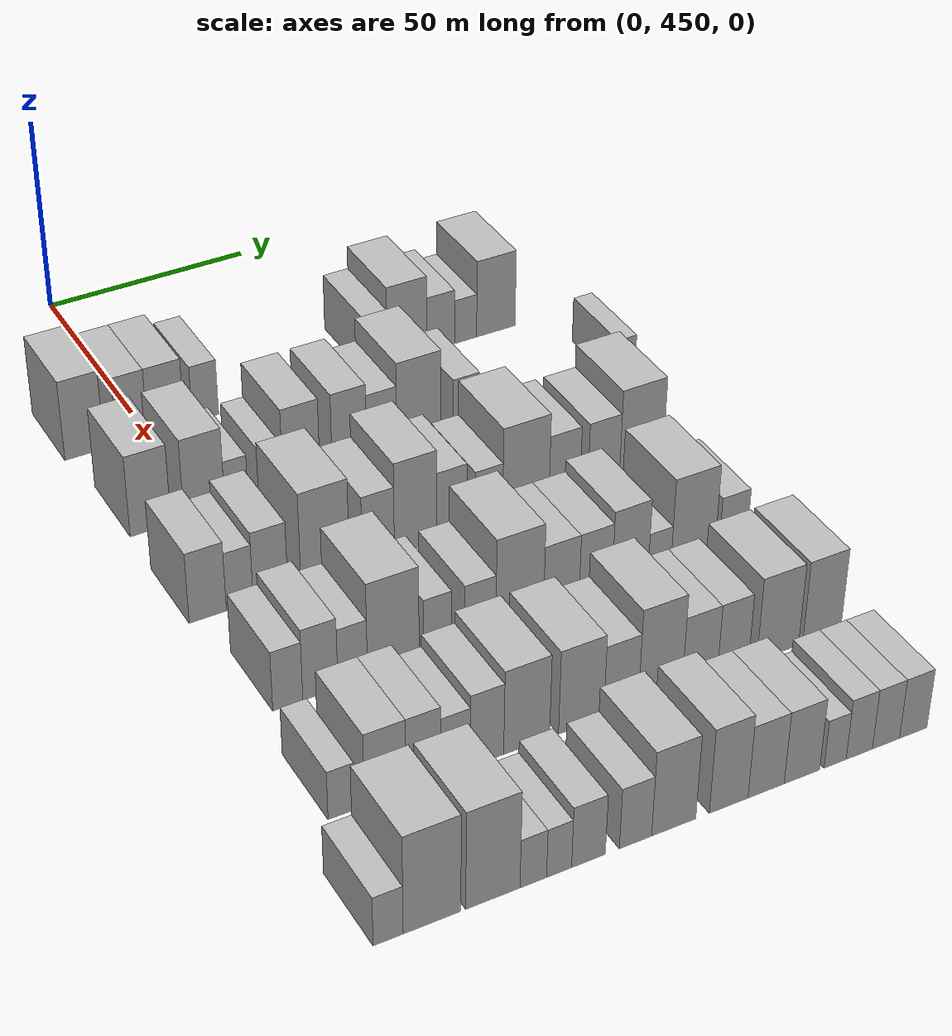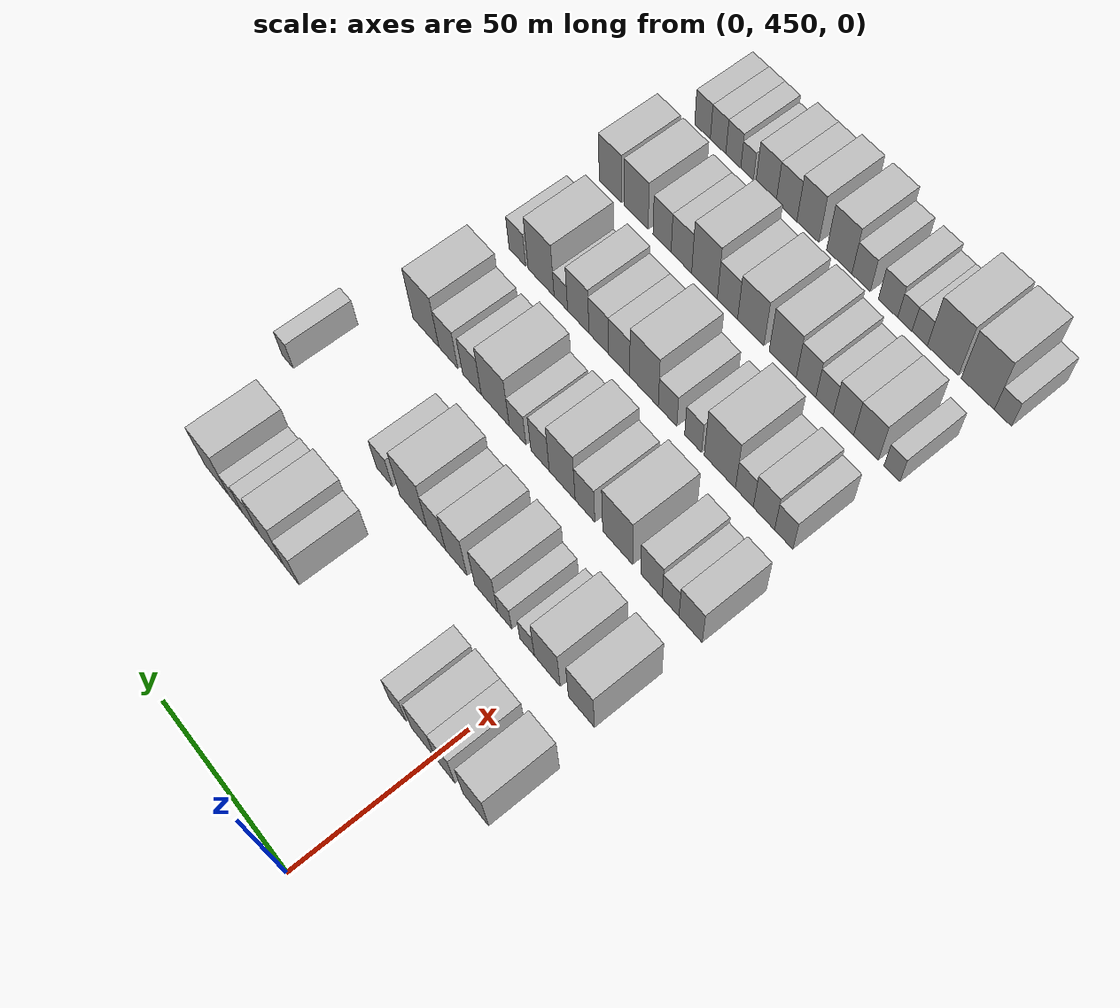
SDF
<sdf version="1.6">
 <world name="default">
  <model name="building_112">
   <static>1</static>
   <pose>50.0000 434.6580 0 0.000000 0.000000 0.000000</pose>
   <link name="link">
    <pose>0 0 10.50 0 0 0</pose>
    <collision name="collision"><geometry><box><size>20.0000 9.3532 21.0000</size></box></geometry></collision>
    <visual name="visual">
     <cast_shadows>0</cast_shadows>
     <geometry><box><size>20.0000 9.3532 21.0000</size></box></geometry>
     <material>
      <script>
       <uri>model://HANNAS_wall/materials/scripts</uri>
       <uri>model://HANNAS_wall/materials/textures</uri>
       <name>vrc/HANNAS_wall</name>
      </script>
     </material>
    </visual>
   </link>
  </model>
  <model name="building_113">
   <static>1</static>
   <pose>50.0000 446.0581 0 0.000000 0.000000 0.000000</pose>
   <link name="link">
    <pose>0 0 9.00 0 0 0</pose>
    <collision name="collision"><geometry><box><size>20.0000 7.4470 18.0000</size></box></geometry></collision>
    <visual name="visual">
     <cast_shadows>0</cast_shadows>
     <geometry><box><size>20.0000 7.4470 18.0000</size></box></geometry>
     <material>
      <script>
       <uri>model://HANNAS_wall/materials/scripts</uri>
       <uri>model://HANNAS_wall/materials/textures</uri>
       <name>vrc/HANNAS_wall</name>
      </script>
     </material>
    </visual>
   </link>
  </model>
  <model name="building_114">
   <static>1</static>
   <pose>50.0000 454.2263 0 0.000000 0.000000 0.000000</pose>
   <link name="link">
    <pose>0 0 9.00 0 0 0</pose>
    <collision name="collision"><geometry><box><size>20.0000 8.8895 18.0000</size></box></geometry></collision>
    <visual name="visual">
     <cast_shadows>0</cast_shadows>
     <geometry><box><size>20.0000 8.8895 18.0000</size></box></geometry>
     <material>
      <script>
       <uri>model://HANNAS_wall/materials/scripts</uri>
       <uri>model://HANNAS_wall/materials/textures</uri>
       <name>vrc/HANNAS_wall</name>
      </script>
     </material>
    </visual>
   </link>
  </model>
  <model name="building_115">
   <static>1</static>
   <pose>50.0000 463.8956 0 0.000000 0.000000 0.000000</pose>
   <link name="link">
    <pose>0 0 7.50 0 0 0</pose>
    <collision name="collision"><geometry><box><size>20.0000 6.4490 15.0000</size></box></geometry></collision>
    <visual name="visual">
     <cast_shadows>0</cast_shadows>
     <geometry><box><size>20.0000 6.4490 15.0000</size></box></geometry>
     <material>
      <script>
       <uri>model://HANNAS_wall/materials/scripts</uri>
       <uri>model://HANNAS_wall/materials/textures</uri>
       <name>vrc/HANNAS_wall</name>
      </script>
     </material>
    </visual>
   </link>
  </model>
  <model name="building_116">
   <static>1</static>
   <pose>50.0000 506.7661 0 0.000000 0.000000 0.000000</pose>
   <link name="link">
    <pose>0 0 7.50 0 0 0</pose>
    <collision name="collision"><geometry><box><size>20.0000 6.4307 15.0000</size></box></geometry></collision>
    <visual name="visual">
     <cast_shadows>0</cast_shadows>
     <geometry><box><size>20.0000 6.4307 15.0000</size></box></geometry>
     <material>
      <script>
       <uri>model://HANNAS_wall/materials/scripts</uri>
       <uri>model://HANNAS_wall/materials/textures</uri>
       <name>vrc/HANNAS_wall</name>
      </script>
     </material>
    </visual>
   </link>
  </model>
  <model name="building_117">
   <static>1</static>
   <pose>50.0000 515.1719 0 0.000000 0.000000 0.000000</pose>
   <link name="link">
    <pose>0 0 10.50 0 0 0</pose>
    <collision name="collision"><geometry><box><size>20.0000 10.3808 21.0000</size></box></geometry></collision>
    <visual name="visual">
     <cast_shadows>0</cast_shadows>
     <geometry><box><size>20.0000 10.3808 21.0000</size></box></geometry>
     <material>
      <script>
       <uri>model://HANNAS_wall/materials/scripts</uri>
       <uri>model://HANNAS_wall/materials/textures</uri>
       <name>vrc/HANNAS_wall</name>
      </script>
     </material>
    </visual>
   </link>
  </model>
  <model name="building_118">
   <static>1</static>
   <pose>50.0000 524.0543 0 0.000000 0.000000 0.000000</pose>
   <link name="link">
    <pose>0 0 7.50 0 0 0</pose>
    <collision name="collision"><geometry><box><size>20.0000 7.3841 15.0000</size></box></geometry></collision>
    <visual name="visual">
     <cast_shadows>0</cast_shadows>
     <geometry><box><size>20.0000 7.3841 15.0000</size></box></geometry>
     <material>
      <script>
       <uri>model://HANNAS_wall/materials/scripts</uri>
       <uri>model://HANNAS_wall/materials/textures</uri>
       <name>vrc/HANNAS_wall</name>
      </script>
     </material>
    </visual>
   </link>
  </model>
  <model name="building_119">
   <static>1</static>
   <pose>50.0000 530.6966 0 0.000000 0.000000 0.000000</pose>
   <link name="link">
    <pose>0 0 6.00 0 0 0</pose>
    <collision name="collision"><geometry><box><size>20.0000 5.9004 12.0000</size></box></geometry></collision>
    <visual name="visual">
     <cast_shadows>0</cast_shadows>
     <geometry><box><size>20.0000 5.9004 12.0000</size></box></geometry>
     <material>
      <script>
       <uri>model://HANNAS_wall/materials/scripts</uri>
       <uri>model://HANNAS_wall/materials/textures</uri>
       <name>vrc/HANNAS_wall</name>
      </script>
     </material>
    </visual>
   </link>
  </model>
  <model name="building_120">
   <static>1</static>
   <pose>50.0000 538.8459 0 0.000000 0.000000 0.000000</pose>
   <link name="link">
    <pose>0 0 10.50 0 0 0</pose>
    <collision name="collision"><geometry><box><size>20.0000 10.3983 21.0000</size></box></geometry></collision>
    <visual name="visual">
     <cast_shadows>0</cast_shadows>
     <geometry><box><size>20.0000 10.3983 21.0000</size></box></geometry>
     <material>
      <script>
       <uri>model://HANNAS_wall/materials/scripts</uri>
       <uri>model://HANNAS_wall/materials/textures</uri>
       <name>vrc/HANNAS_wall</name>
      </script>
     </material>
    </visual>
   </link>
  </model>
  <model name="building_228">
   <static>1</static>
   <pose>82.0000 437.0011 0 0.000000 0.000000 0.000000</pose>
   <link name="link">
    <pose>0 0 10.50 0 0 0</pose>
    <collision name="collision"><geometry><box><size>20.0000 9.4480 21.0000</size></box></geometry></collision>
    <visual name="visual">
     <cast_shadows>0</cast_shadows>
     <geometry><box><size>20.0000 9.4480 21.0000</size></box></geometry>
     <material>
      <script>
       <uri>model://HANNAS_wall/materials/scripts</uri>
       <uri>model://HANNAS_wall/materials/textures</uri>
       <name>vrc/HANNAS_wall</name>
      </script>
     </material>
    </visual>
   </link>
  </model>
  <model name="building_229">
   <static>1</static>
   <pose>82.0000 449.5131 0 0.000000 0.000000 0.000000</pose>
   <link name="link">
    <pose>0 0 10.50 0 0 0</pose>
    <collision name="collision"><geometry><box><size>20.0000 9.5760 21.0000</size></box></geometry></collision>
    <visual name="visual">
     <cast_shadows>0</cast_shadows>
     <geometry><box><size>20.0000 9.5760 21.0000</size></box></geometry>
     <material>
      <script>
       <uri>model://HANNAS_wall/materials/scripts</uri>
       <uri>model://HANNAS_wall/materials/textures</uri>
       <name>vrc/HANNAS_wall</name>
      </script>
     </material>
    </visual>
   </link>
  </model>
  <model name="building_230">
   <static>1</static>
   <pose>82.0000 457.0496 0 0.000000 0.000000 0.000000</pose>
   <link name="link">
    <pose>0 0 6.00 0 0 0</pose>
    <collision name="collision"><geometry><box><size>20.0000 5.4970 12.0000</size></box></geometry></collision>
    <visual name="visual">
     <cast_shadows>0</cast_shadows>
     <geometry><box><size>20.0000 5.4970 12.0000</size></box></geometry>
     <material>
      <script>
       <uri>model://HANNAS_wall/materials/scripts</uri>
       <uri>model://HANNAS_wall/materials/textures</uri>
       <name>vrc/HANNAS_wall</name>
      </script>
     </material>
    </visual>
   </link>
  </model>
  <model name="building_231">
   <static>1</static>
   <pose>82.0000 465.4951 0 0.000000 0.000000 0.000000</pose>
   <link name="link">
    <pose>0 0 6.00 0 0 0</pose>
    <collision name="collision"><geometry><box><size>20.0000 5.3938 12.0000</size></box></geometry></collision>
    <visual name="visual">
     <cast_shadows>0</cast_shadows>
     <geometry><box><size>20.0000 5.3938 12.0000</size></box></geometry>
     <material>
      <script>
       <uri>model://HANNAS_wall/materials/scripts</uri>
       <uri>model://HANNAS_wall/materials/textures</uri>
       <name>vrc/HANNAS_wall</name>
      </script>
     </material>
    </visual>
   </link>
  </model>
  <model name="building_232">
   <static>1</static>
   <pose>82.0000 472.6428 0 0.000000 0.000000 0.000000</pose>
   <link name="link">
    <pose>0 0 10.50 0 0 0</pose>
    <collision name="collision"><geometry><box><size>20.0000 8.9017 21.0000</size></box></geometry></collision>
    <visual name="visual">
     <cast_shadows>0</cast_shadows>
     <geometry><box><size>20.0000 8.9017 21.0000</size></box></geometry>
     <material>
      <script>
       <uri>model://HANNAS_wall/materials/scripts</uri>
       <uri>model://HANNAS_wall/materials/textures</uri>
       <name>vrc/HANNAS_wall</name>
      </script>
     </material>
    </visual>
   </link>
  </model>
  <model name="building_233">
   <static>1</static>
   <pose>82.0000 484.3307 0 0.000000 0.000000 0.000000</pose>
   <link name="link">
    <pose>0 0 10.50 0 0 0</pose>
    <collision name="collision"><geometry><box><size>20.0000 8.4741 21.0000</size></box></geometry></collision>
    <visual name="visual">
     <cast_shadows>0</cast_shadows>
     <geometry><box><size>20.0000 8.4741 21.0000</size></box></geometry>
     <material>
      <script>
       <uri>model://HANNAS_wall/materials/scripts</uri>
       <uri>model://HANNAS_wall/materials/textures</uri>
       <name>vrc/HANNAS_wall</name>
      </script>
     </material>
    </visual>
   </link>
  </model>
  <model name="building_234">
   <static>1</static>
   <pose>82.0000 492.3155 0 0.000000 0.000000 0.000000</pose>
   <link name="link">
    <pose>0 0 9.00 0 0 0</pose>
    <collision name="collision"><geometry><box><size>20.0000 7.4955 18.0000</size></box></geometry></collision>
    <visual name="visual">
     <cast_shadows>0</cast_shadows>
     <geometry><box><size>20.0000 7.4955 18.0000</size></box></geometry>
     <material>
      <script>
       <uri>model://HANNAS_wall/materials/scripts</uri>
       <uri>model://HANNAS_wall/materials/textures</uri>
       <name>vrc/HANNAS_wall</name>
      </script>
     </material>
    </visual>
   </link>
  </model>
  <model name="building_235">
   <static>1</static>
   <pose>82.0000 501.6104 0 0.000000 0.000000 0.000000</pose>
   <link name="link">
    <pose>0 0 12.00 0 0 0</pose>
    <collision name="collision"><geometry><box><size>20.0000 11.0942 24.0000</size></box></geometry></collision>
    <visual name="visual">
     <cast_shadows>0</cast_shadows>
     <geometry><box><size>20.0000 11.0942 24.0000</size></box></geometry>
     <material>
      <script>
       <uri>model://HANNAS_wall/materials/scripts</uri>
       <uri>model://HANNAS_wall/materials/textures</uri>
       <name>vrc/HANNAS_wall</name>
      </script>
     </material>
    </visual>
   </link>
  </model>
  <model name="building_236">
   <static>1</static>
   <pose>82.0000 513.4902 0 0.000000 0.000000 0.000000</pose>
   <link name="link">
    <pose>0 0 7.50 0 0 0</pose>
    <collision name="collision"><geometry><box><size>20.0000 6.6654 15.0000</size></box></geometry></collision>
    <visual name="visual">
     <cast_shadows>0</cast_shadows>
     <geometry><box><size>20.0000 6.6654 15.0000</size></box></geometry>
     <material>
      <script>
       <uri>model://HANNAS_wall/materials/scripts</uri>
       <uri>model://HANNAS_wall/materials/textures</uri>
       <name>vrc/HANNAS_wall</name>
      </script>
     </material>
    </visual>
   </link>
  </model>
  <model name="building_237">
   <static>1</static>
   <pose>82.0000 555.2536 0 0.000000 0.000000 0.000000</pose>
   <link name="link">
    <pose>0 0 6.00 0 0 0</pose>
    <collision name="collision"><geometry><box><size>20.0000 4.9538 12.0000</size></box></geometry></collision>
    <visual name="visual">
     <cast_shadows>0</cast_shadows>
     <geometry><box><size>20.0000 4.9538 12.0000</size></box></geometry>
     <material>
      <script>
       <uri>model://HANNAS_wall/materials/scripts</uri>
       <uri>model://HANNAS_wall/materials/textures</uri>
       <name>vrc/HANNAS_wall</name>
      </script>
     </material>
    </visual>
   </link>
  </model>
  <model name="building_344">
   <static>1</static>
   <pose>114.0000 436.1235 0 0.000000 0.000000 0.000000</pose>
   <link name="link">
    <pose>0 0 9.00 0 0 0</pose>
    <collision name="collision"><geometry><box><size>20.0000 8.3082 18.0000</size></box></geometry></collision>
    <visual name="visual">
     <cast_shadows>0</cast_shadows>
     <geometry><box><size>20.0000 8.3082 18.0000</size></box></geometry>
     <material>
      <script>
       <uri>model://HANNAS_wall/materials/scripts</uri>
       <uri>model://HANNAS_wall/materials/textures</uri>
       <name>vrc/HANNAS_wall</name>
      </script>
     </material>
    </visual>
   </link>
  </model>
  <model name="building_345">
   <static>1</static>
   <pose>114.0000 443.3012 0 0.000000 0.000000 0.000000</pose>
   <link name="link">
    <pose>0 0 7.50 0 0 0</pose>
    <collision name="collision"><geometry><box><size>20.0000 6.0471 15.0000</size></box></geometry></collision>
    <visual name="visual">
     <cast_shadows>0</cast_shadows>
     <geometry><box><size>20.0000 6.0471 15.0000</size></box></geometry>
     <material>
      <script>
       <uri>model://HANNAS_wall/materials/scripts</uri>
       <uri>model://HANNAS_wall/materials/textures</uri>
       <name>vrc/HANNAS_wall</name>
      </script>
     </material>
    </visual>
   </link>
  </model>
  <model name="building_346">
   <static>1</static>
   <pose>114.0000 450.2635 0 0.000000 0.000000 0.000000</pose>
   <link name="link">
    <pose>0 0 9.00 0 0 0</pose>
    <collision name="collision"><geometry><box><size>20.0000 7.8776 18.0000</size></box></geometry></collision>
    <visual name="visual">
     <cast_shadows>0</cast_shadows>
     <geometry><box><size>20.0000 7.8776 18.0000</size></box></geometry>
     <material>
      <script>
       <uri>model://HANNAS_wall/materials/scripts</uri>
       <uri>model://HANNAS_wall/materials/textures</uri>
       <name>vrc/HANNAS_wall</name>
      </script>
     </material>
    </visual>
   </link>
  </model>
  <model name="building_347">
   <static>1</static>
   <pose>114.0000 462.8107 0 0.000000 0.000000 0.000000</pose>
   <link name="link">
    <pose>0 0 12.00 0 0 0</pose>
    <collision name="collision"><geometry><box><size>20.0000 11.2167 24.0000</size></box></geometry></collision>
    <visual name="visual">
     <cast_shadows>0</cast_shadows>
     <geometry><box><size>20.0000 11.2167 24.0000</size></box></geometry>
     <material>
      <script>
       <uri>model://HANNAS_wall/materials/scripts</uri>
       <uri>model://HANNAS_wall/materials/textures</uri>
       <name>vrc/HANNAS_wall</name>
      </script>
     </material>
    </visual>
   </link>
  </model>
  <model name="building_348">
   <static>1</static>
   <pose>114.0000 475.1992 0 0.000000 0.000000 0.000000</pose>
   <link name="link">
    <pose>0 0 9.00 0 0 0</pose>
    <collision name="collision"><geometry><box><size>20.0000 7.5605 18.0000</size></box></geometry></collision>
    <visual name="visual">
     <cast_shadows>0</cast_shadows>
     <geometry><box><size>20.0000 7.5605 18.0000</size></box></geometry>
     <material>
      <script>
       <uri>model://HANNAS_wall/materials/scripts</uri>
       <uri>model://HANNAS_wall/materials/textures</uri>
       <name>vrc/HANNAS_wall</name>
      </script>
     </material>
    </visual>
   </link>
  </model>
  <model name="building_349">
   <static>1</static>
   <pose>114.0000 484.0128 0 0.000000 0.000000 0.000000</pose>
   <link name="link">
    <pose>0 0 12.00 0 0 0</pose>
    <collision name="collision"><geometry><box><size>20.0000 10.0666 24.0000</size></box></geometry></collision>
    <visual name="visual">
     <cast_shadows>0</cast_shadows>
     <geometry><box><size>20.0000 10.0666 24.0000</size></box></geometry>
     <material>
      <script>
       <uri>model://HANNAS_wall/materials/scripts</uri>
       <uri>model://HANNAS_wall/materials/textures</uri>
       <name>vrc/HANNAS_wall</name>
      </script>
     </material>
    </visual>
   </link>
  </model>
  <model name="building_350">
   <static>1</static>
   <pose>114.0000 492.6758 0 0.000000 0.000000 0.000000</pose>
   <link name="link">
    <pose>0 0 9.00 0 0 0</pose>
    <collision name="collision"><geometry><box><size>20.0000 7.2595 18.0000</size></box></geometry></collision>
    <visual name="visual">
     <cast_shadows>0</cast_shadows>
     <geometry><box><size>20.0000 7.2595 18.0000</size></box></geometry>
     <material>
      <script>
       <uri>model://HANNAS_wall/materials/scripts</uri>
       <uri>model://HANNAS_wall/materials/textures</uri>
       <name>vrc/HANNAS_wall</name>
      </script>
     </material>
    </visual>
   </link>
  </model>
  <model name="building_351">
   <static>1</static>
   <pose>114.0000 501.6518 0 0.000000 0.000000 0.000000</pose>
   <link name="link">
    <pose>0 0 7.50 0 0 0</pose>
    <collision name="collision"><geometry><box><size>20.0000 6.6923 15.0000</size></box></geometry></collision>
    <visual name="visual">
     <cast_shadows>0</cast_shadows>
     <geometry><box><size>20.0000 6.6923 15.0000</size></box></geometry>
     <material>
      <script>
       <uri>model://HANNAS_wall/materials/scripts</uri>
       <uri>model://HANNAS_wall/materials/textures</uri>
       <name>vrc/HANNAS_wall</name>
      </script>
     </material>
    </visual>
   </link>
  </model>
  <model name="building_352">
   <static>1</static>
   <pose>114.0000 510.7250 0 0.000000 0.000000 0.000000</pose>
   <link name="link">
    <pose>0 0 12.00 0 0 0</pose>
    <collision name="collision"><geometry><box><size>20.0000 11.4541 24.0000</size></box></geometry></collision>
    <visual name="visual">
     <cast_shadows>0</cast_shadows>
     <geometry><box><size>20.0000 11.4541 24.0000</size></box></geometry>
     <material>
      <script>
       <uri>model://HANNAS_wall/materials/scripts</uri>
       <uri>model://HANNAS_wall/materials/textures</uri>
       <name>vrc/HANNAS_wall</name>
      </script>
     </material>
    </visual>
   </link>
  </model>
  <model name="building_353">
   <static>1</static>
   <pose>114.0000 520.3325 0 0.000000 0.000000 0.000000</pose>
   <link name="link">
    <pose>0 0 9.00 0 0 0</pose>
    <collision name="collision"><geometry><box><size>20.0000 7.7610 18.0000</size></box></geometry></collision>
    <visual name="visual">
     <cast_shadows>0</cast_shadows>
     <geometry><box><size>20.0000 7.7610 18.0000</size></box></geometry>
     <material>
      <script>
       <uri>model://HANNAS_wall/materials/scripts</uri>
       <uri>model://HANNAS_wall/materials/textures</uri>
       <name>vrc/HANNAS_wall</name>
      </script>
     </material>
    </visual>
   </link>
  </model>
  <model name="building_354">
   <static>1</static>
   <pose>114.0000 530.2066 0 0.000000 0.000000 0.000000</pose>
   <link name="link">
    <pose>0 0 9.00 0 0 0</pose>
    <collision name="collision"><geometry><box><size>20.0000 7.9872 18.0000</size></box></geometry></collision>
    <visual name="visual">
     <cast_shadows>0</cast_shadows>
     <geometry><box><size>20.0000 7.9872 18.0000</size></box></geometry>
     <material>
      <script>
       <uri>model://HANNAS_wall/materials/scripts</uri>
       <uri>model://HANNAS_wall/materials/textures</uri>
       <name>vrc/HANNAS_wall</name>
      </script>
     </material>
    </visual>
   </link>
  </model>
  <model name="building_355">
   <static>1</static>
   <pose>114.0000 539.7605 0 0.000000 0.000000 0.000000</pose>
   <link name="link">
    <pose>0 0 12.00 0 0 0</pose>
    <collision name="collision"><geometry><box><size>20.0000 11.1205 24.0000</size></box></geometry></collision>
    <visual name="visual">
     <cast_shadows>0</cast_shadows>
     <geometry><box><size>20.0000 11.1205 24.0000</size></box></geometry>
     <material>
      <script>
       <uri>model://HANNAS_wall/materials/scripts</uri>
       <uri>model://HANNAS_wall/materials/textures</uri>
       <name>vrc/HANNAS_wall</name>
      </script>
     </material>
    </visual>
   </link>
  </model>
  <model name="building_461">
   <static>1</static>
   <pose>146.0000 439.0527 0 0.000000 0.000000 0.000000</pose>
   <link name="link">
    <pose>0 0 7.50 0 0 0</pose>
    <collision name="collision"><geometry><box><size>20.0000 6.5292 15.0000</size></box></geometry></collision>
    <visual name="visual">
     <cast_shadows>0</cast_shadows>
     <geometry><box><size>20.0000 6.5292 15.0000</size></box></geometry>
     <material>
      <script>
       <uri>model://HANNAS_wall/materials/scripts</uri>
       <uri>model://HANNAS_wall/materials/textures</uri>
       <name>vrc/HANNAS_wall</name>
      </script>
     </material>
    </visual>
   </link>
  </model>
  <model name="building_462">
   <static>1</static>
   <pose>146.0000 446.1555 0 0.000000 0.000000 0.000000</pose>
   <link name="link">
    <pose>0 0 9.00 0 0 0</pose>
    <collision name="collision"><geometry><box><size>20.0000 7.6764 18.0000</size></box></geometry></collision>
    <visual name="visual">
     <cast_shadows>0</cast_shadows>
     <geometry><box><size>20.0000 7.6764 18.0000</size></box></geometry>
     <material>
      <script>
       <uri>model://HANNAS_wall/materials/scripts</uri>
       <uri>model://HANNAS_wall/materials/textures</uri>
       <name>vrc/HANNAS_wall</name>
      </script>
     </material>
    </visual>
   </link>
  </model>
  <model name="building_463">
   <static>1</static>
   <pose>146.0000 453.2674 0 0.000000 0.000000 0.000000</pose>
   <link name="link">
    <pose>0 0 7.50 0 0 0</pose>
    <collision name="collision"><geometry><box><size>20.0000 6.5474 15.0000</size></box></geometry></collision>
    <visual name="visual">
     <cast_shadows>0</cast_shadows>
     <geometry><box><size>20.0000 6.5474 15.0000</size></box></geometry>
     <material>
      <script>
       <uri>model://HANNAS_wall/materials/scripts</uri>
       <uri>model://HANNAS_wall/materials/textures</uri>
       <name>vrc/HANNAS_wall</name>
      </script>
     </material>
    </visual>
   </link>
  </model>
  <model name="building_464">
   <static>1</static>
   <pose>146.0000 462.3223 0 0.000000 0.000000 0.000000</pose>
   <link name="link">
    <pose>0 0 12.00 0 0 0</pose>
    <collision name="collision"><geometry><box><size>20.0000 11.5624 24.0000</size></box></geometry></collision>
    <visual name="visual">
     <cast_shadows>0</cast_shadows>
     <geometry><box><size>20.0000 11.5624 24.0000</size></box></geometry>
     <material>
      <script>
       <uri>model://HANNAS_wall/materials/scripts</uri>
       <uri>model://HANNAS_wall/materials/textures</uri>
       <name>vrc/HANNAS_wall</name>
      </script>
     </material>
    </visual>
   </link>
  </model>
  <model name="building_465">
   <static>1</static>
   <pose>146.0000 472.2973 0 0.000000 0.000000 0.000000</pose>
   <link name="link">
    <pose>0 0 7.50 0 0 0</pose>
    <collision name="collision"><geometry><box><size>20.0000 6.3877 15.0000</size></box></geometry></collision>
    <visual name="visual">
     <cast_shadows>0</cast_shadows>
     <geometry><box><size>20.0000 6.3877 15.0000</size></box></geometry>
     <material>
      <script>
       <uri>model://HANNAS_wall/materials/scripts</uri>
       <uri>model://HANNAS_wall/materials/textures</uri>
       <name>vrc/HANNAS_wall</name>
      </script>
     </material>
    </visual>
   </link>
  </model>
  <model name="building_466">
   <static>1</static>
   <pose>146.0000 482.0520 0 0.000000 0.000000 0.000000</pose>
   <link name="link">
    <pose>0 0 7.50 0 0 0</pose>
    <collision name="collision"><geometry><box><size>20.0000 7.1217 15.0000</size></box></geometry></collision>
    <visual name="visual">
     <cast_shadows>0</cast_shadows>
     <geometry><box><size>20.0000 7.1217 15.0000</size></box></geometry>
     <material>
      <script>
       <uri>model://HANNAS_wall/materials/scripts</uri>
       <uri>model://HANNAS_wall/materials/textures</uri>
       <name>vrc/HANNAS_wall</name>
      </script>
     </material>
    </visual>
   </link>
  </model>
  <model name="building_467">
   <static>1</static>
   <pose>146.0000 491.1781 0 0.000000 0.000000 0.000000</pose>
   <link name="link">
    <pose>0 0 12.00 0 0 0</pose>
    <collision name="collision"><geometry><box><size>20.0000 11.1304 24.0000</size></box></geometry></collision>
    <visual name="visual">
     <cast_shadows>0</cast_shadows>
     <geometry><box><size>20.0000 11.1304 24.0000</size></box></geometry>
     <material>
      <script>
       <uri>model://HANNAS_wall/materials/scripts</uri>
       <uri>model://HANNAS_wall/materials/textures</uri>
       <name>vrc/HANNAS_wall</name>
      </script>
     </material>
    </visual>
   </link>
  </model>
  <model name="building_468">
   <static>1</static>
   <pose>146.0000 500.9476 0 0.000000 0.000000 0.000000</pose>
   <link name="link">
    <pose>0 0 9.00 0 0 0</pose>
    <collision name="collision"><geometry><box><size>20.0000 8.4087 18.0000</size></box></geometry></collision>
    <visual name="visual">
     <cast_shadows>0</cast_shadows>
     <geometry><box><size>20.0000 8.4087 18.0000</size></box></geometry>
     <material>
      <script>
       <uri>model://HANNAS_wall/materials/scripts</uri>
       <uri>model://HANNAS_wall/materials/textures</uri>
       <name>vrc/HANNAS_wall</name>
      </script>
     </material>
    </visual>
   </link>
  </model>
  <model name="building_469">
   <static>1</static>
   <pose>146.0000 509.0792 0 0.000000 0.000000 0.000000</pose>
   <link name="link">
    <pose>0 0 9.00 0 0 0</pose>
    <collision name="collision"><geometry><box><size>20.0000 7.8544 18.0000</size></box></geometry></collision>
    <visual name="visual">
     <cast_shadows>0</cast_shadows>
     <geometry><box><size>20.0000 7.8544 18.0000</size></box></geometry>
     <material>
      <script>
       <uri>model://HANNAS_wall/materials/scripts</uri>
       <uri>model://HANNAS_wall/materials/textures</uri>
       <name>vrc/HANNAS_wall</name>
      </script>
     </material>
    </visual>
   </link>
  </model>
  <model name="building_470">
   <static>1</static>
   <pose>146.0000 517.3806 0 0.000000 0.000000 0.000000</pose>
   <link name="link">
    <pose>0 0 10.50 0 0 0</pose>
    <collision name="collision"><geometry><box><size>20.0000 8.7485 21.0000</size></box></geometry></collision>
    <visual name="visual">
     <cast_shadows>0</cast_shadows>
     <geometry><box><size>20.0000 8.7485 21.0000</size></box></geometry>
     <material>
      <script>
       <uri>model://HANNAS_wall/materials/scripts</uri>
       <uri>model://HANNAS_wall/materials/textures</uri>
       <name>vrc/HANNAS_wall</name>
      </script>
     </material>
    </visual>
   </link>
  </model>
  <model name="building_471">
   <static>1</static>
   <pose>146.0000 524.5492 0 0.000000 0.000000 0.000000</pose>
   <link name="link">
    <pose>0 0 6.00 0 0 0</pose>
    <collision name="collision"><geometry><box><size>20.0000 5.5888 12.0000</size></box></geometry></collision>
    <visual name="visual">
     <cast_shadows>0</cast_shadows>
     <geometry><box><size>20.0000 5.5888 12.0000</size></box></geometry>
     <material>
      <script>
       <uri>model://HANNAS_wall/materials/scripts</uri>
       <uri>model://HANNAS_wall/materials/textures</uri>
       <name>vrc/HANNAS_wall</name>
      </script>
     </material>
    </visual>
   </link>
  </model>
  <model name="building_472">
   <static>1</static>
   <pose>146.0000 532.7976 0 0.000000 0.000000 0.000000</pose>
   <link name="link">
    <pose>0 0 12.00 0 0 0</pose>
    <collision name="collision"><geometry><box><size>20.0000 10.9081 24.0000</size></box></geometry></collision>
    <visual name="visual">
     <cast_shadows>0</cast_shadows>
     <geometry><box><size>20.0000 10.9081 24.0000</size></box></geometry>
     <material>
      <script>
       <uri>model://HANNAS_wall/materials/scripts</uri>
       <uri>model://HANNAS_wall/materials/textures</uri>
       <name>vrc/HANNAS_wall</name>
      </script>
     </material>
    </visual>
   </link>
  </model>
  <model name="building_473">
   <static>1</static>
   <pose>146.0000 542.7695 0 0.000000 0.000000 0.000000</pose>
   <link name="link">
    <pose>0 0 7.50 0 0 0</pose>
    <collision name="collision"><geometry><box><size>20.0000 7.0357 15.0000</size></box></geometry></collision>
    <visual name="visual">
     <cast_shadows>0</cast_shadows>
     <geometry><box><size>20.0000 7.0357 15.0000</size></box></geometry>
     <material>
      <script>
       <uri>model://HANNAS_wall/materials/scripts</uri>
       <uri>model://HANNAS_wall/materials/textures</uri>
       <name>vrc/HANNAS_wall</name>
      </script>
     </material>
    </visual>
   </link>
  </model>
  <model name="building_586">
   <static>1</static>
   <pose>178.0000 434.9873 0 0.000000 0.000000 0.000000</pose>
   <link name="link">
    <pose>0 0 6.00 0 0 0</pose>
    <collision name="collision"><geometry><box><size>20.0000 5.5712 12.0000</size></box></geometry></collision>
    <visual name="visual">
     <cast_shadows>0</cast_shadows>
     <geometry><box><size>20.0000 5.5712 12.0000</size></box></geometry>
     <material>
      <script>
       <uri>model://HANNAS_wall/materials/scripts</uri>
       <uri>model://HANNAS_wall/materials/textures</uri>
       <name>vrc/HANNAS_wall</name>
      </script>
     </material>
    </visual>
   </link>
  </model>
  <model name="building_587">
   <static>1</static>
   <pose>178.0000 444.1779 0 0.000000 0.000000 0.000000</pose>
   <link name="link">
    <pose>0 0 9.00 0 0 0</pose>
    <collision name="collision"><geometry><box><size>20.0000 8.8101 18.0000</size></box></geometry></collision>
    <visual name="visual">
     <cast_shadows>0</cast_shadows>
     <geometry><box><size>20.0000 8.8101 18.0000</size></box></geometry>
     <material>
      <script>
       <uri>model://HANNAS_wall/materials/scripts</uri>
       <uri>model://HANNAS_wall/materials/textures</uri>
       <name>vrc/HANNAS_wall</name>
      </script>
     </material>
    </visual>
   </link>
  </model>
  <model name="building_588">
   <static>1</static>
   <pose>178.0000 452.2635 0 0.000000 0.000000 0.000000</pose>
   <link name="link">
    <pose>0 0 9.00 0 0 0</pose>
    <collision name="collision"><geometry><box><size>20.0000 7.3611 18.0000</size></box></geometry></collision>
    <visual name="visual">
     <cast_shadows>0</cast_shadows>
     <geometry><box><size>20.0000 7.3611 18.0000</size></box></geometry>
     <material>
      <script>
       <uri>model://HANNAS_wall/materials/scripts</uri>
       <uri>model://HANNAS_wall/materials/textures</uri>
       <name>vrc/HANNAS_wall</name>
      </script>
     </material>
    </visual>
   </link>
  </model>
  <model name="building_589">
   <static>1</static>
   <pose>178.0000 459.1509 0 0.000000 0.000000 0.000000</pose>
   <link name="link">
    <pose>0 0 7.50 0 0 0</pose>
    <collision name="collision"><geometry><box><size>20.0000 6.4137 15.0000</size></box></geometry></collision>
    <visual name="visual">
     <cast_shadows>0</cast_shadows>
     <geometry><box><size>20.0000 6.4137 15.0000</size></box></geometry>
     <material>
      <script>
       <uri>model://HANNAS_wall/materials/scripts</uri>
       <uri>model://HANNAS_wall/materials/textures</uri>
       <name>vrc/HANNAS_wall</name>
      </script>
     </material>
    </visual>
   </link>
  </model>
  <model name="building_590">
   <static>1</static>
   <pose>178.0000 465.9999 0 0.000000 0.000000 0.000000</pose>
   <link name="link">
    <pose>0 0 9.00 0 0 0</pose>
    <collision name="collision"><geometry><box><size>20.0000 7.2842 18.0000</size></box></geometry></collision>
    <visual name="visual">
     <cast_shadows>0</cast_shadows>
     <geometry><box><size>20.0000 7.2842 18.0000</size></box></geometry>
     <material>
      <script>
       <uri>model://HANNAS_wall/materials/scripts</uri>
       <uri>model://HANNAS_wall/materials/textures</uri>
       <name>vrc/HANNAS_wall</name>
      </script>
     </material>
    </visual>
   </link>
  </model>
  <model name="building_591">
   <static>1</static>
   <pose>178.0000 474.7125 0 0.000000 0.000000 0.000000</pose>
   <link name="link">
    <pose>0 0 10.50 0 0 0</pose>
    <collision name="collision"><geometry><box><size>20.0000 10.1410 21.0000</size></box></geometry></collision>
    <visual name="visual">
     <cast_shadows>0</cast_shadows>
     <geometry><box><size>20.0000 10.1410 21.0000</size></box></geometry>
     <material>
      <script>
       <uri>model://HANNAS_wall/materials/scripts</uri>
       <uri>model://HANNAS_wall/materials/textures</uri>
       <name>vrc/HANNAS_wall</name>
      </script>
     </material>
    </visual>
   </link>
  </model>
  <model name="building_592">
   <static>1</static>
   <pose>178.0000 486.8575 0 0.000000 0.000000 0.000000</pose>
   <link name="link">
    <pose>0 0 10.50 0 0 0</pose>
    <collision name="collision"><geometry><box><size>20.0000 10.1490 21.0000</size></box></geometry></collision>
    <visual name="visual">
     <cast_shadows>0</cast_shadows>
     <geometry><box><size>20.0000 10.1490 21.0000</size></box></geometry>
     <material>
      <script>
       <uri>model://HANNAS_wall/materials/scripts</uri>
       <uri>model://HANNAS_wall/materials/textures</uri>
       <name>vrc/HANNAS_wall</name>
      </script>
     </material>
    </visual>
   </link>
  </model>
  <model name="building_593">
   <static>1</static>
   <pose>178.0000 495.8835 0 0.000000 0.000000 0.000000</pose>
   <link name="link">
    <pose>0 0 9.00 0 0 0</pose>
    <collision name="collision"><geometry><box><size>20.0000 7.9030 18.0000</size></box></geometry></collision>
    <visual name="visual">
     <cast_shadows>0</cast_shadows>
     <geometry><box><size>20.0000 7.9030 18.0000</size></box></geometry>
     <material>
      <script>
       <uri>model://HANNAS_wall/materials/scripts</uri>
       <uri>model://HANNAS_wall/materials/textures</uri>
       <name>vrc/HANNAS_wall</name>
      </script>
     </material>
    </visual>
   </link>
  </model>
  <model name="building_594">
   <static>1</static>
   <pose>178.0000 504.9119 0 0.000000 0.000000 0.000000</pose>
   <link name="link">
    <pose>0 0 12.00 0 0 0</pose>
    <collision name="collision"><geometry><box><size>20.0000 10.1538 24.0000</size></box></geometry></collision>
    <visual name="visual">
     <cast_shadows>0</cast_shadows>
     <geometry><box><size>20.0000 10.1538 24.0000</size></box></geometry>
     <material>
      <script>
       <uri>model://HANNAS_wall/materials/scripts</uri>
       <uri>model://HANNAS_wall/materials/textures</uri>
       <name>vrc/HANNAS_wall</name>
      </script>
     </material>
    </visual>
   </link>
  </model>
  <model name="building_595">
   <static>1</static>
   <pose>178.0000 514.1134 0 0.000000 0.000000 0.000000</pose>
   <link name="link">
    <pose>0 0 9.00 0 0 0</pose>
    <collision name="collision"><geometry><box><size>20.0000 8.2493 18.0000</size></box></geometry></collision>
    <visual name="visual">
     <cast_shadows>0</cast_shadows>
     <geometry><box><size>20.0000 8.2493 18.0000</size></box></geometry>
     <material>
      <script>
       <uri>model://HANNAS_wall/materials/scripts</uri>
       <uri>model://HANNAS_wall/materials/textures</uri>
       <name>vrc/HANNAS_wall</name>
      </script>
     </material>
    </visual>
   </link>
  </model>
  <model name="building_596">
   <static>1</static>
   <pose>178.0000 521.9295 0 0.000000 0.000000 0.000000</pose>
   <link name="link">
    <pose>0 0 9.00 0 0 0</pose>
    <collision name="collision"><geometry><box><size>20.0000 7.3829 18.0000</size></box></geometry></collision>
    <visual name="visual">
     <cast_shadows>0</cast_shadows>
     <geometry><box><size>20.0000 7.3829 18.0000</size></box></geometry>
     <material>
      <script>
       <uri>model://HANNAS_wall/materials/scripts</uri>
       <uri>model://HANNAS_wall/materials/textures</uri>
       <name>vrc/HANNAS_wall</name>
      </script>
     </material>
    </visual>
   </link>
  </model>
  <model name="building_597">
   <static>1</static>
   <pose>178.0000 532.6503 0 0.000000 0.000000 0.000000</pose>
   <link name="link">
    <pose>0 0 10.50 0 0 0</pose>
    <collision name="collision"><geometry><box><size>20.0000 10.0587 21.0000</size></box></geometry></collision>
    <visual name="visual">
     <cast_shadows>0</cast_shadows>
     <geometry><box><size>20.0000 10.0587 21.0000</size></box></geometry>
     <material>
      <script>
       <uri>model://HANNAS_wall/materials/scripts</uri>
       <uri>model://HANNAS_wall/materials/textures</uri>
       <name>vrc/HANNAS_wall</name>
      </script>
     </material>
    </visual>
   </link>
  </model>
  <model name="building_598">
   <static>1</static>
   <pose>178.0000 543.3386 0 0.000000 0.000000 0.000000</pose>
   <link name="link">
    <pose>0 0 10.50 0 0 0</pose>
    <collision name="collision"><geometry><box><size>20.0000 9.3178 21.0000</size></box></geometry></collision>
    <visual name="visual">
     <cast_shadows>0</cast_shadows>
     <geometry><box><size>20.0000 9.3178 21.0000</size></box></geometry>
     <material>
      <script>
       <uri>model://HANNAS_wall/materials/scripts</uri>
       <uri>model://HANNAS_wall/materials/textures</uri>
       <name>vrc/HANNAS_wall</name>
      </script>
     </material>
    </visual>
   </link>
  </model>
  <model name="building_698">
   <static>1</static>
   <pose>210.0000 428.4114 0 0.000000 0.000000 0.000000</pose>
   <link name="link">
    <pose>0 0 6.00 0 0 0</pose>
    <collision name="collision"><geometry><box><size>20.0000 5.9782 12.0000</size></box></geometry></collision>
    <visual name="visual">
     <cast_shadows>0</cast_shadows>
     <geometry><box><size>20.0000 5.9782 12.0000</size></box></geometry>
     <material>
      <script>
       <uri>model://HANNAS_wall/materials/scripts</uri>
       <uri>model://HANNAS_wall/materials/textures</uri>
       <name>vrc/HANNAS_wall</name>
      </script>
     </material>
    </visual>
   </link>
  </model>
  <model name="building_699">
   <static>1</static>
   <pose>210.0000 437.2123 0 0.000000 0.000000 0.000000</pose>
   <link name="link">
    <pose>0 0 12.00 0 0 0</pose>
    <collision name="collision"><geometry><box><size>20.0000 11.6235 24.0000</size></box></geometry></collision>
    <visual name="visual">
     <cast_shadows>0</cast_shadows>
     <geometry><box><size>20.0000 11.6235 24.0000</size></box></geometry>
     <material>
      <script>
       <uri>model://HANNAS_wall/materials/scripts</uri>
       <uri>model://HANNAS_wall/materials/textures</uri>
       <name>vrc/HANNAS_wall</name>
      </script>
     </material>
    </visual>
   </link>
  </model>
  <model name="building_700">
   <static>1</static>
   <pose>210.0000 449.6031 0 0.000000 0.000000 0.000000</pose>
   <link name="link">
    <pose>0 0 12.00 0 0 0</pose>
    <collision name="collision"><geometry><box><size>20.0000 11.1583 24.0000</size></box></geometry></collision>
    <visual name="visual">
     <cast_shadows>0</cast_shadows>
     <geometry><box><size>20.0000 11.1583 24.0000</size></box></geometry>
     <material>
      <script>
       <uri>model://HANNAS_wall/materials/scripts</uri>
       <uri>model://HANNAS_wall/materials/textures</uri>
       <name>vrc/HANNAS_wall</name>
      </script>
     </material>
    </visual>
   </link>
  </model>
  <model name="building_701">
   <static>1</static>
   <pose>210.0000 457.9520 0 0.000000 0.000000 0.000000</pose>
   <link name="link">
    <pose>0 0 6.00 0 0 0</pose>
    <collision name="collision"><geometry><box><size>20.0000 5.5395 12.0000</size></box></geometry></collision>
    <visual name="visual">
     <cast_shadows>0</cast_shadows>
     <geometry><box><size>20.0000 5.5395 12.0000</size></box></geometry>
     <material>
      <script>
       <uri>model://HANNAS_wall/materials/scripts</uri>
       <uri>model://HANNAS_wall/materials/textures</uri>
       <name>vrc/HANNAS_wall</name>
      </script>
     </material>
    </visual>
   </link>
  </model>
  <model name="building_702">
   <static>1</static>
   <pose>210.0000 463.3559 0 0.000000 0.000000 0.000000</pose>
   <link name="link">
    <pose>0 0 6.00 0 0 0</pose>
    <collision name="collision"><geometry><box><size>20.0000 5.2683 12.0000</size></box></geometry></collision>
    <visual name="visual">
     <cast_shadows>0</cast_shadows>
     <geometry><box><size>20.0000 5.2683 12.0000</size></box></geometry>
     <material>
      <script>
       <uri>model://HANNAS_wall/materials/scripts</uri>
       <uri>model://HANNAS_wall/materials/textures</uri>
       <name>vrc/HANNAS_wall</name>
      </script>
     </material>
    </visual>
   </link>
  </model>
  <model name="building_703">
   <static>1</static>
   <pose>210.0000 469.5757 0 0.000000 0.000000 0.000000</pose>
   <link name="link">
    <pose>0 0 7.50 0 0 0</pose>
    <collision name="collision"><geometry><box><size>20.0000 7.1713 15.0000</size></box></geometry></collision>
    <visual name="visual">
     <cast_shadows>0</cast_shadows>
     <geometry><box><size>20.0000 7.1713 15.0000</size></box></geometry>
     <material>
      <script>
       <uri>model://HANNAS_wall/materials/scripts</uri>
       <uri>model://HANNAS_wall/materials/textures</uri>
       <name>vrc/HANNAS_wall</name>
      </script>
     </material>
    </visual>
   </link>
  </model>
  <model name="building_704">
   <static>1</static>
   <pose>210.0000 479.6451 0 0.000000 0.000000 0.000000</pose>
   <link name="link">
    <pose>0 0 7.50 0 0 0</pose>
    <collision name="collision"><geometry><box><size>20.0000 6.9675 15.0000</size></box></geometry></collision>
    <visual name="visual">
     <cast_shadows>0</cast_shadows>
     <geometry><box><size>20.0000 6.9675 15.0000</size></box></geometry>
     <material>
      <script>
       <uri>model://HANNAS_wall/materials/scripts</uri>
       <uri>model://HANNAS_wall/materials/textures</uri>
       <name>vrc/HANNAS_wall</name>
      </script>
     </material>
    </visual>
   </link>
  </model>
  <model name="building_705">
   <static>1</static>
   <pose>210.0000 487.9523 0 0.000000 0.000000 0.000000</pose>
   <link name="link">
    <pose>0 0 10.50 0 0 0</pose>
    <collision name="collision"><geometry><box><size>20.0000 9.6468 21.0000</size></box></geometry></collision>
    <visual name="visual">
     <cast_shadows>0</cast_shadows>
     <geometry><box><size>20.0000 9.6468 21.0000</size></box></geometry>
     <material>
      <script>
       <uri>model://HANNAS_wall/materials/scripts</uri>
       <uri>model://HANNAS_wall/materials/textures</uri>
       <name>vrc/HANNAS_wall</name>
      </script>
     </material>
    </visual>
   </link>
  </model>
  <model name="building_706">
   <static>1</static>
   <pose>210.0000 500.0823 0 0.000000 0.000000 0.000000</pose>
   <link name="link">
    <pose>0 0 10.50 0 0 0</pose>
    <collision name="collision"><geometry><box><size>20.0000 8.6133 21.0000</size></box></geometry></collision>
    <visual name="visual">
     <cast_shadows>0</cast_shadows>
     <geometry><box><size>20.0000 8.6133 21.0000</size></box></geometry>
     <material>
      <script>
       <uri>model://HANNAS_wall/materials/scripts</uri>
       <uri>model://HANNAS_wall/materials/textures</uri>
       <name>vrc/HANNAS_wall</name>
      </script>
     </material>
    </visual>
   </link>
  </model>
  <model name="building_707">
   <static>1</static>
   <pose>210.0000 508.4732 0 0.000000 0.000000 0.000000</pose>
   <link name="link">
    <pose>0 0 9.00 0 0 0</pose>
    <collision name="collision"><geometry><box><size>20.0000 8.1685 18.0000</size></box></geometry></collision>
    <visual name="visual">
     <cast_shadows>0</cast_shadows>
     <geometry><box><size>20.0000 8.1685 18.0000</size></box></geometry>
     <material>
      <script>
       <uri>model://HANNAS_wall/materials/scripts</uri>
       <uri>model://HANNAS_wall/materials/textures</uri>
       <name>vrc/HANNAS_wall</name>
      </script>
     </material>
    </visual>
   </link>
  </model>
  <model name="building_708">
   <static>1</static>
   <pose>210.0000 516.6160 0 0.000000 0.000000 0.000000</pose>
   <link name="link">
    <pose>0 0 9.00 0 0 0</pose>
    <collision name="collision"><geometry><box><size>20.0000 8.1173 18.0000</size></box></geometry></collision>
    <visual name="visual">
     <cast_shadows>0</cast_shadows>
     <geometry><box><size>20.0000 8.1173 18.0000</size></box></geometry>
     <material>
      <script>
       <uri>model://HANNAS_wall/materials/scripts</uri>
       <uri>model://HANNAS_wall/materials/textures</uri>
       <name>vrc/HANNAS_wall</name>
      </script>
     </material>
    </visual>
   </link>
  </model>
  <model name="building_709">
   <static>1</static>
   <pose>210.0000 524.2354 0 0.000000 0.000000 0.000000</pose>
   <link name="link">
    <pose>0 0 6.00 0 0 0</pose>
    <collision name="collision"><geometry><box><size>20.0000 5.1214 12.0000</size></box></geometry></collision>
    <visual name="visual">
     <cast_shadows>0</cast_shadows>
     <geometry><box><size>20.0000 5.1214 12.0000</size></box></geometry>
     <material>
      <script>
       <uri>model://HANNAS_wall/materials/scripts</uri>
       <uri>model://HANNAS_wall/materials/textures</uri>
       <name>vrc/HANNAS_wall</name>
      </script>
     </material>
    </visual>
   </link>
  </model>
  <model name="building_710">
   <static>1</static>
   <pose>210.0000 529.8549 0 0.000000 0.000000 0.000000</pose>
   <link name="link">
    <pose>0 0 7.50 0 0 0</pose>
    <collision name="collision"><geometry><box><size>20.0000 6.1177 15.0000</size></box></geometry></collision>
    <visual name="visual">
     <cast_shadows>0</cast_shadows>
     <geometry><box><size>20.0000 6.1177 15.0000</size></box></geometry>
     <material>
      <script>
       <uri>model://HANNAS_wall/materials/scripts</uri>
       <uri>model://HANNAS_wall/materials/textures</uri>
       <name>vrc/HANNAS_wall</name>
      </script>
     </material>
    </visual>
   </link>
  </model>
  <model name="building_711">
   <static>1</static>
   <pose>210.0000 536.1111 0 0.000000 0.000000 0.000000</pose>
   <link name="link">
    <pose>0 0 7.50 0 0 0</pose>
    <collision name="collision"><geometry><box><size>20.0000 6.3947 15.0000</size></box></geometry></collision>
    <visual name="visual">
     <cast_shadows>0</cast_shadows>
     <geometry><box><size>20.0000 6.3947 15.0000</size></box></geometry>
     <material>
      <script>
       <uri>model://HANNAS_wall/materials/scripts</uri>
       <uri>model://HANNAS_wall/materials/textures</uri>
       <name>vrc/HANNAS_wall</name>
      </script>
     </material>
    </visual>
   </link>
  </model>
  <model name="building_712">
   <static>1</static>
   <pose>210.0000 542.5637 0 0.000000 0.000000 0.000000</pose>
   <link name="link">
    <pose>0 0 7.50 0 0 0</pose>
    <collision name="collision"><geometry><box><size>20.0000 6.5106 15.0000</size></box></geometry></collision>
    <visual name="visual">
     <cast_shadows>0</cast_shadows>
     <geometry><box><size>20.0000 6.5106 15.0000</size></box></geometry>
     <material>
      <script>
       <uri>model://HANNAS_wall/materials/scripts</uri>
       <uri>model://HANNAS_wall/materials/textures</uri>
       <name>vrc/HANNAS_wall</name>
      </script>
     </material>
    </visual>
   </link>
  </model>
 </world>
</sdf>
